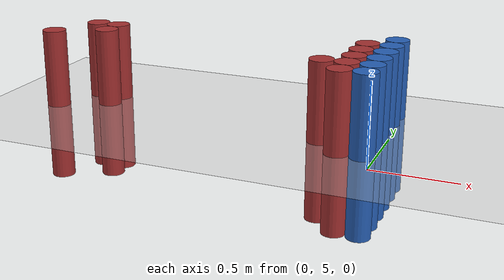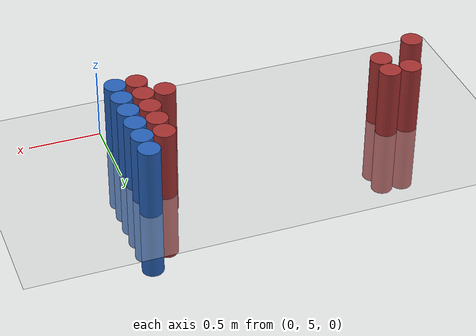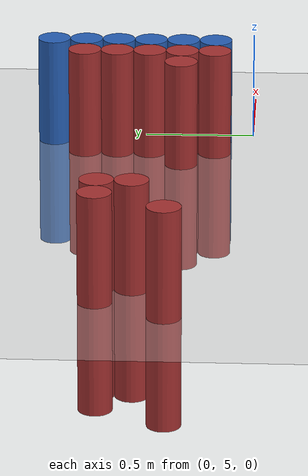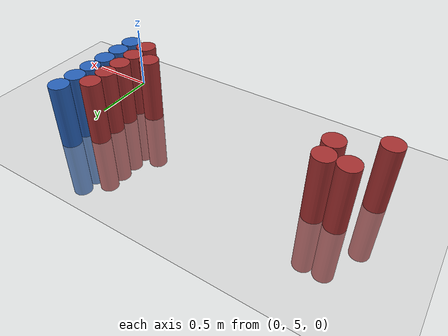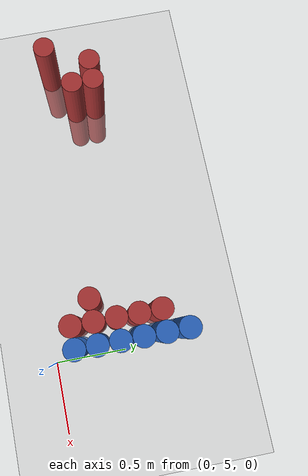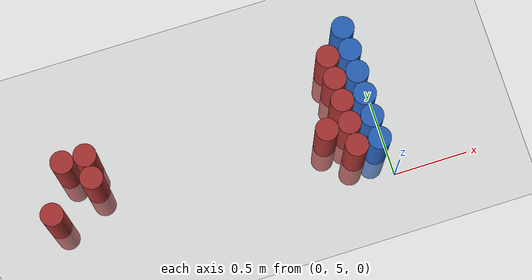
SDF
<sdf version="1.6">
 <world name="default">
  <model name="ground_plane">
   <static>1</static>
   <link name="link">
    <collision name="collision">
     <geometry><plane><normal>0 0 1</normal><size>100 100</size></plane></geometry>
     <surface><friction><ode><mu>100</mu><mu2>50</mu2></ode></friction></surface>
    </collision>
    <visual name="visual">
     <cast_shadows>0</cast_shadows>
     <geometry><plane><normal>0 0 1</normal><size>100 100</size></plane></geometry>
     <material>
      <script><uri>file://media/materials/scripts/gazebo.material</uri><name>Gazebo/Grey</name></script>
     </material>
    </visual>
   </link>
  </model>
  <model name="unit_cylinder_166">
   <static>1</static>
   <pose>-2.175000 5.325000 0.000000 0.000000 0.000000 0.000000</pose>
   <link name="link">
    <inertial>
     <mass>1</mass>
     <inertia><ixx>0.145833</ixx><ixy>0</ixy><ixz>0</ixz><iyy>0.145833</iyy><iyz>0</iyz><izz>0.125</izz></inertia>
    </inertial>
    <collision name="collision">
     <geometry><cylinder><radius>0.075000</radius><length>1</length></cylinder></geometry>
    </collision>
    <visual name="visual">
     <geometry><cylinder><radius>0.075000</radius><length>1</length></cylinder></geometry>
     <material>
      <ambient>0.648000 0.192000 0.192000 1</ambient>
      <diffuse>0.648000 0.192000 0.192000 1</diffuse>
     </material>
     <material>
      <script><name>Gazebo/Grey</name><uri>file://media/materials/scripts/gazebo.material</uri></script>
     </material>
    </visual>
   </link>
  </model>
  <model name="unit_cylinder_170">
   <static>1</static>
   <pose>-2.025000 5.625000 0.000000 0.000000 0.000000 0.000000</pose>
   <link name="link">
    <inertial>
     <mass>1</mass>
     <inertia><ixx>0.145833</ixx><ixy>0</ixy><ixz>0</ixz><iyy>0.145833</iyy><iyz>0</iyz><izz>0.125</izz></inertia>
    </inertial>
    <collision name="collision">
     <geometry><cylinder><radius>0.075000</radius><length>1</length></cylinder></geometry>
    </collision>
    <visual name="visual">
     <geometry><cylinder><radius>0.075000</radius><length>1</length></cylinder></geometry>
     <material>
      <ambient>0.648000 0.192000 0.192000 1</ambient>
      <diffuse>0.648000 0.192000 0.192000 1</diffuse>
     </material>
     <material>
      <script><name>Gazebo/Grey</name><uri>file://media/materials/scripts/gazebo.material</uri></script>
     </material>
    </visual>
   </link>
  </model>
  <model name="unit_cylinder_175">
   <static>1</static>
   <pose>-1.875000 5.475000 0.000000 0.000000 0.000000 0.000000</pose>
   <link name="link">
    <inertial>
     <mass>1</mass>
     <inertia><ixx>0.145833</ixx><ixy>0</ixy><ixz>0</ixz><iyy>0.145833</iyy><iyz>0</iyz><izz>0.125</izz></inertia>
    </inertial>
    <collision name="collision">
     <geometry><cylinder><radius>0.075000</radius><length>1</length></cylinder></geometry>
    </collision>
    <visual name="visual">
     <geometry><cylinder><radius>0.075000</radius><length>1</length></cylinder></geometry>
     <material>
      <ambient>0.648000 0.192000 0.192000 1</ambient>
      <diffuse>0.648000 0.192000 0.192000 1</diffuse>
     </material>
     <material>
      <script><name>Gazebo/Grey</name><uri>file://media/materials/scripts/gazebo.material</uri></script>
     </material>
    </visual>
   </link>
  </model>
  <model name="unit_cylinder_176">
   <static>1</static>
   <pose>-1.875000 5.625000 0.000000 0.000000 0.000000 0.000000</pose>
   <link name="link">
    <inertial>
     <mass>1</mass>
     <inertia><ixx>0.145833</ixx><ixy>0</ixy><ixz>0</ixz><iyy>0.145833</iyy><iyz>0</iyz><izz>0.125</izz></inertia>
    </inertial>
    <collision name="collision">
     <geometry><cylinder><radius>0.075000</radius><length>1</length></cylinder></geometry>
    </collision>
    <visual name="visual">
     <geometry><cylinder><radius>0.075000</radius><length>1</length></cylinder></geometry>
     <material>
      <ambient>0.648000 0.192000 0.192000 1</ambient>
      <diffuse>0.648000 0.192000 0.192000 1</diffuse>
     </material>
     <material>
      <script><name>Gazebo/Grey</name><uri>file://media/materials/scripts/gazebo.material</uri></script>
     </material>
    </visual>
   </link>
  </model>
  <model name="unit_cylinder_207">
   <static>1</static>
   <pose>-0.375000 5.325000 0.000000 0.000000 0.000000 0.000000</pose>
   <link name="link">
    <inertial>
     <mass>1</mass>
     <inertia><ixx>0.145833</ixx><ixy>0</ixy><ixz>0</ixz><iyy>0.145833</iyy><iyz>0</iyz><izz>0.125</izz></inertia>
    </inertial>
    <collision name="collision">
     <geometry><cylinder><radius>0.075000</radius><length>1</length></cylinder></geometry>
    </collision>
    <visual name="visual">
     <geometry><cylinder><radius>0.075000</radius><length>1</length></cylinder></geometry>
     <material>
      <ambient>0.648000 0.192000 0.192000 1</ambient>
      <diffuse>0.648000 0.192000 0.192000 1</diffuse>
     </material>
     <material>
      <script><name>Gazebo/Grey</name><uri>file://media/materials/scripts/gazebo.material</uri></script>
     </material>
    </visual>
   </link>
  </model>
  <model name="unit_cylinder_210">
   <static>1</static>
   <pose>-0.225000 5.175000 0.000000 0.000000 0.000000 0.000000</pose>
   <link name="link">
    <inertial>
     <mass>1</mass>
     <inertia><ixx>0.145833</ixx><ixy>0</ixy><ixz>0</ixz><iyy>0.145833</iyy><iyz>0</iyz><izz>0.125</izz></inertia>
    </inertial>
    <collision name="collision">
     <geometry><cylinder><radius>0.075000</radius><length>1</length></cylinder></geometry>
    </collision>
    <visual name="visual">
     <geometry><cylinder><radius>0.075000</radius><length>1</length></cylinder></geometry>
     <material>
      <ambient>0.648000 0.192000 0.192000 1</ambient>
      <diffuse>0.648000 0.192000 0.192000 1</diffuse>
     </material>
     <material>
      <script><name>Gazebo/Grey</name><uri>file://media/materials/scripts/gazebo.material</uri></script>
     </material>
    </visual>
   </link>
  </model>
  <model name="unit_cylinder_211">
   <static>1</static>
   <pose>-0.225000 5.325000 0.000000 0.000000 0.000000 0.000000</pose>
   <link name="link">
    <inertial>
     <mass>1</mass>
     <inertia><ixx>0.145833</ixx><ixy>0</ixy><ixz>0</ixz><iyy>0.145833</iyy><iyz>0</iyz><izz>0.125</izz></inertia>
    </inertial>
    <collision name="collision">
     <geometry><cylinder><radius>0.075000</radius><length>1</length></cylinder></geometry>
    </collision>
    <visual name="visual">
     <geometry><cylinder><radius>0.075000</radius><length>1</length></cylinder></geometry>
     <material>
      <ambient>0.648000 0.192000 0.192000 1</ambient>
      <diffuse>0.648000 0.192000 0.192000 1</diffuse>
     </material>
     <material>
      <script><name>Gazebo/Grey</name><uri>file://media/materials/scripts/gazebo.material</uri></script>
     </material>
    </visual>
   </link>
  </model>
  <model name="unit_cylinder_212">
   <static>1</static>
   <pose>-0.225000 5.475000 0.000000 0.000000 0.000000 0.000000</pose>
   <link name="link">
    <inertial>
     <mass>1</mass>
     <inertia><ixx>0.145833</ixx><ixy>0</ixy><ixz>0</ixz><iyy>0.145833</iyy><iyz>0</iyz><izz>0.125</izz></inertia>
    </inertial>
    <collision name="collision">
     <geometry><cylinder><radius>0.075000</radius><length>1</length></cylinder></geometry>
    </collision>
    <visual name="visual">
     <geometry><cylinder><radius>0.075000</radius><length>1</length></cylinder></geometry>
     <material>
      <ambient>0.648000 0.192000 0.192000 1</ambient>
      <diffuse>0.648000 0.192000 0.192000 1</diffuse>
     </material>
     <material>
      <script><name>Gazebo/Grey</name><uri>file://media/materials/scripts/gazebo.material</uri></script>
     </material>
    </visual>
   </link>
  </model>
  <model name="unit_cylinder_213">
   <static>1</static>
   <pose>-0.225000 5.625000 0.000000 0.000000 0.000000 0.000000</pose>
   <link name="link">
    <inertial>
     <mass>1</mass>
     <inertia><ixx>0.145833</ixx><ixy>0</ixy><ixz>0</ixz><iyy>0.145833</iyy><iyz>0</iyz><izz>0.125</izz></inertia>
    </inertial>
    <collision name="collision">
     <geometry><cylinder><radius>0.075000</radius><length>1</length></cylinder></geometry>
    </collision>
    <visual name="visual">
     <geometry><cylinder><radius>0.075000</radius><length>1</length></cylinder></geometry>
     <material>
      <ambient>0.648000 0.192000 0.192000 1</ambient>
      <diffuse>0.648000 0.192000 0.192000 1</diffuse>
     </material>
     <material>
      <script><name>Gazebo/Grey</name><uri>file://media/materials/scripts/gazebo.material</uri></script>
     </material>
    </visual>
   </link>
  </model>
  <model name="unit_cylinder_214">
   <static>1</static>
   <pose>-0.225000 5.775000 0.000000 0.000000 0.000000 0.000000</pose>
   <link name="link">
    <inertial>
     <mass>1</mass>
     <inertia><ixx>0.145833</ixx><ixy>0</ixy><ixz>0</ixz><iyy>0.145833</iyy><iyz>0</iyz><izz>0.125</izz></inertia>
    </inertial>
    <collision name="collision">
     <geometry><cylinder><radius>0.075000</radius><length>1</length></cylinder></geometry>
    </collision>
    <visual name="visual">
     <geometry><cylinder><radius>0.075000</radius><length>1</length></cylinder></geometry>
     <material>
      <ambient>0.648000 0.192000 0.192000 1</ambient>
      <diffuse>0.648000 0.192000 0.192000 1</diffuse>
     </material>
     <material>
      <script><name>Gazebo/Grey</name><uri>file://media/materials/scripts/gazebo.material</uri></script>
     </material>
    </visual>
   </link>
  </model>
  <model name="unit_cylinder_227">
   <static>1</static>
   <pose>-0.075000 5.175000 0.000000 0.000000 0.000000 0.000000</pose>
   <link name="link">
    <inertial>
     <mass>1</mass>
     <inertia><ixx>0.145833</ixx><ixy>0</ixy><ixz>0</ixz><iyy>0.145833</iyy><iyz>0</iyz><izz>0.125</izz></inertia>
    </inertial>
    <collision name="collision">
     <geometry><cylinder><radius>0.075000</radius><length>1</length></cylinder></geometry>
    </collision>
    <visual name="visual">
     <geometry><cylinder><radius>0.075000</radius><length>1</length></cylinder></geometry>
     <material>
      <ambient>0.152000 0.379000 0.720000 1</ambient>
      <diffuse>0.152000 0.379000 0.720000 1</diffuse>
     </material>
     <material>
      <script><name>Gazebo/Grey</name><uri>file://media/materials/scripts/gazebo.material</uri></script>
     </material>
    </visual>
   </link>
  </model>
  <model name="unit_cylinder_228">
   <static>1</static>
   <pose>-0.075000 5.325000 0.000000 0.000000 0.000000 0.000000</pose>
   <link name="link">
    <inertial>
     <mass>1</mass>
     <inertia><ixx>0.145833</ixx><ixy>0</ixy><ixz>0</ixz><iyy>0.145833</iyy><iyz>0</iyz><izz>0.125</izz></inertia>
    </inertial>
    <collision name="collision">
     <geometry><cylinder><radius>0.075000</radius><length>1</length></cylinder></geometry>
    </collision>
    <visual name="visual">
     <geometry><cylinder><radius>0.075000</radius><length>1</length></cylinder></geometry>
     <material>
      <ambient>0.152000 0.379000 0.720000 1</ambient>
      <diffuse>0.152000 0.379000 0.720000 1</diffuse>
     </material>
     <material>
      <script><name>Gazebo/Grey</name><uri>file://media/materials/scripts/gazebo.material</uri></script>
     </material>
    </visual>
   </link>
  </model>
  <model name="unit_cylinder_229">
   <static>1</static>
   <pose>-0.075000 5.475000 0.000000 0.000000 0.000000 0.000000</pose>
   <link name="link">
    <inertial>
     <mass>1</mass>
     <inertia><ixx>0.145833</ixx><ixy>0</ixy><ixz>0</ixz><iyy>0.145833</iyy><iyz>0</iyz><izz>0.125</izz></inertia>
    </inertial>
    <collision name="collision">
     <geometry><cylinder><radius>0.075000</radius><length>1</length></cylinder></geometry>
    </collision>
    <visual name="visual">
     <geometry><cylinder><radius>0.075000</radius><length>1</length></cylinder></geometry>
     <material>
      <ambient>0.152000 0.379000 0.720000 1</ambient>
      <diffuse>0.152000 0.379000 0.720000 1</diffuse>
     </material>
     <material>
      <script><name>Gazebo/Grey</name><uri>file://media/materials/scripts/gazebo.material</uri></script>
     </material>
    </visual>
   </link>
  </model>
  <model name="unit_cylinder_230">
   <static>1</static>
   <pose>-0.075000 5.625000 0.000000 0.000000 0.000000 0.000000</pose>
   <link name="link">
    <inertial>
     <mass>1</mass>
     <inertia><ixx>0.145833</ixx><ixy>0</ixy><ixz>0</ixz><iyy>0.145833</iyy><iyz>0</iyz><izz>0.125</izz></inertia>
    </inertial>
    <collision name="collision">
     <geometry><cylinder><radius>0.075000</radius><length>1</length></cylinder></geometry>
    </collision>
    <visual name="visual">
     <geometry><cylinder><radius>0.075000</radius><length>1</length></cylinder></geometry>
     <material>
      <ambient>0.152000 0.379000 0.720000 1</ambient>
      <diffuse>0.152000 0.379000 0.720000 1</diffuse>
     </material>
     <material>
      <script><name>Gazebo/Grey</name><uri>file://media/materials/scripts/gazebo.material</uri></script>
     </material>
    </visual>
   </link>
  </model>
  <model name="unit_cylinder_231">
   <static>1</static>
   <pose>-0.075000 5.775000 0.000000 0.000000 0.000000 0.000000</pose>
   <link name="link">
    <inertial>
     <mass>1</mass>
     <inertia><ixx>0.145833</ixx><ixy>0</ixy><ixz>0</ixz><iyy>0.145833</iyy><iyz>0</iyz><izz>0.125</izz></inertia>
    </inertial>
    <collision name="collision">
     <geometry><cylinder><radius>0.075000</radius><length>1</length></cylinder></geometry>
    </collision>
    <visual name="visual">
     <geometry><cylinder><radius>0.075000</radius><length>1</length></cylinder></geometry>
     <material>
      <ambient>0.152000 0.379000 0.720000 1</ambient>
      <diffuse>0.152000 0.379000 0.720000 1</diffuse>
     </material>
     <material>
      <script><name>Gazebo/Grey</name><uri>file://media/materials/scripts/gazebo.material</uri></script>
     </material>
    </visual>
   </link>
  </model>
  <model name="unit_cylinder_232">
   <static>1</static>
   <pose>-0.075000 5.925000 0.000000 0.000000 0.000000 0.000000</pose>
   <link name="link">
    <inertial>
     <mass>1</mass>
     <inertia><ixx>0.145833</ixx><ixy>0</ixy><ixz>0</ixz><iyy>0.145833</iyy><iyz>0</iyz><izz>0.125</izz></inertia>
    </inertial>
    <collision name="collision">
     <geometry><cylinder><radius>0.075000</radius><length>1</length></cylinder></geometry>
    </collision>
    <visual name="visual">
     <geometry><cylinder><radius>0.075000</radius><length>1</length></cylinder></geometry>
     <material>
      <ambient>0.152000 0.379000 0.720000 1</ambient>
      <diffuse>0.152000 0.379000 0.720000 1</diffuse>
     </material>
     <material>
      <script><name>Gazebo/Grey</name><uri>file://media/materials/scripts/gazebo.material</uri></script>
     </material>
    </visual>
   </link>
  </model>
 </world>
</sdf>
